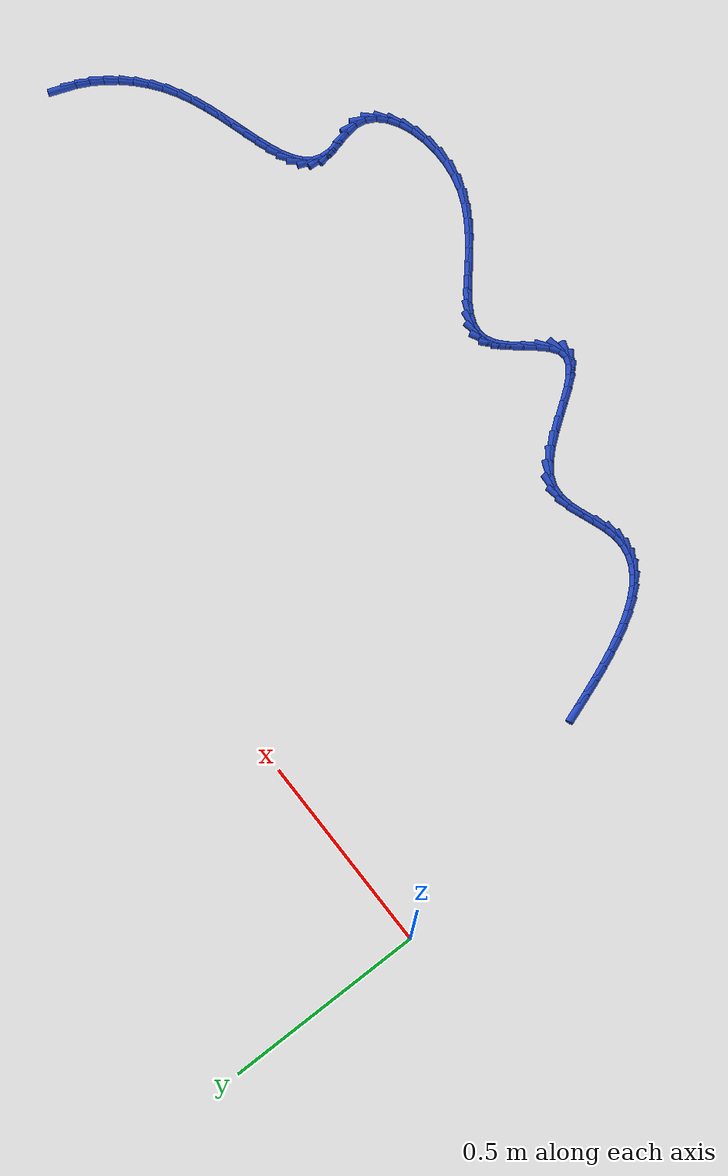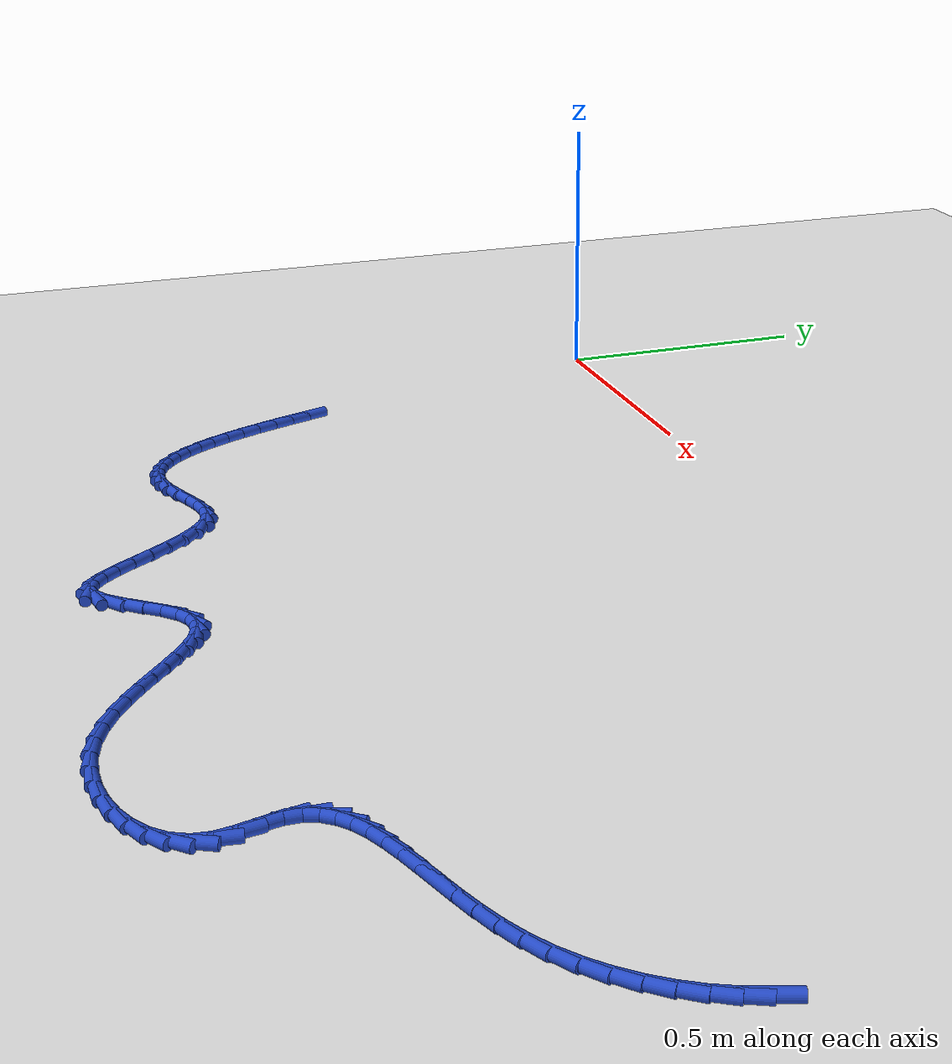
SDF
<sdf version="1.6">
 <world name="default">
  <model name="ground_plane">
   <static>1</static>
   <link name="link">
    <collision name="collision">
     <geometry><plane><normal>0 0 1</normal><size>100 100</size></plane></geometry>
     <surface><friction><ode><mu>100</mu><mu2>50</mu2></ode></friction></surface>
    </collision>
    <visual name="visual">
     <cast_shadows>0</cast_shadows>
     <geometry><plane><normal>0 0 1</normal><size>100 100</size></plane></geometry>
     <material>
      <script><uri>file://media/materials/scripts/gazebo.material</uri><name>Gazebo/WhiteGlow</name></script>
     </material>
    </visual>
   </link>
  </model>
  <model name="line">
   <link name="link_147">
    <pose>2.226204409374347 -0.6352165556235677 0.01 0 1.57 1.223437466874839</pose>
    <collision name="collision">
     <geometry><cylinder><radius>0.01</radius><length>0.08</length></cylinder></geometry>
    </collision>
    <visual name="visual">
     <material>
      <script><name>Gazebo/Blue</name><uri>file://media/materials/scripts/gazebo.material</uri></script>
     </material>
     <geometry><cylinder><radius>0.01</radius><length>0.08</length></cylinder></geometry>
    </visual>
   </link>
   <link name="link_148">
    <pose>2.214405304147954 -0.6678073199366796 0.01 0 1.57 1.1173346988674742</pose>
    <collision name="collision">
     <geometry><cylinder><radius>0.01</radius><length>0.08</length></cylinder></geometry>
    </collision>
    <visual name="visual">
     <material>
      <script><name>Gazebo/Blue</name><uri>file://media/materials/scripts/gazebo.material</uri></script>
     </material>
     <geometry><cylinder><radius>0.01</radius><length>0.08</length></cylinder></geometry>
    </visual>
   </link>
   <link name="link_149">
    <pose>2.198827617034109 -0.6997725915031218 0.01 0 1.57 1.0163183813292729</pose>
    <collision name="collision">
     <geometry><cylinder><radius>0.01</radius><length>0.08</length></cylinder></geometry>
    </collision>
    <visual name="visual">
     <material>
      <script><name>Gazebo/Blue</name><uri>file://media/materials/scripts/gazebo.material</uri></script>
     </material>
     <geometry><cylinder><radius>0.01</radius><length>0.08</length></cylinder></geometry>
    </visual>
   </link>
   <link name="link_150">
    <pose>2.17964737662306 -0.7307442597507422 0.01 0 1.57 0.9187203372529833</pose>
    <collision name="collision">
     <geometry><cylinder><radius>0.01</radius><length>0.08</length></cylinder></geometry>
    </collision>
    <visual name="visual">
     <material>
      <script><name>Gazebo/Blue</name><uri>file://media/materials/scripts/gazebo.material</uri></script>
     </material>
     <geometry><cylinder><radius>0.01</radius><length>0.08</length></cylinder></geometry>
    </visual>
   </link>
   <link name="link_151">
    <pose>2.157040611505059 -0.760354214107389 0.01 0 1.57 0.8230239939863851</pose>
    <collision name="collision">
     <geometry><cylinder><radius>0.01</radius><length>0.08</length></cylinder></geometry>
    </collision>
    <visual name="visual">
     <material>
      <script><name>Gazebo/Blue</name><uri>file://media/materials/scripts/gazebo.material</uri></script>
     </material>
     <geometry><cylinder><radius>0.01</radius><length>0.08</length></cylinder></geometry>
    </visual>
   </link>
   <link name="link_152">
    <pose>2.131183350270356 -0.7882343440009099 0.01 0 1.57 0.727897954029029</pose>
    <collision name="collision">
     <geometry><cylinder><radius>0.01</radius><length>0.08</length></cylinder></geometry>
    </collision>
    <visual name="visual">
     <material>
      <script><name>Gazebo/Blue</name><uri>file://media/materials/scripts/gazebo.material</uri></script>
     </material>
     <geometry><cylinder><radius>0.01</radius><length>0.08</length></cylinder></geometry>
    </visual>
   </link>
   <link name="link_153">
    <pose>2.102251621509201 -0.8140165388591529 0.01 0 1.57 0.6322179862990895</pose>
    <collision name="collision">
     <geometry><cylinder><radius>0.01</radius><length>0.08</length></cylinder></geometry>
    </collision>
    <visual name="visual">
     <material>
      <script><name>Gazebo/Blue</name><uri>file://media/materials/scripts/gazebo.material</uri></script>
     </material>
     <geometry><cylinder><radius>0.01</radius><length>0.08</length></cylinder></geometry>
    </visual>
   </link>
   <link name="link_154">
    <pose>2.070421453811845 -0.837332688109966 0.01 0 1.57 0.5351159728779951</pose>
    <collision name="collision">
     <geometry><cylinder><radius>0.01</radius><length>0.08</length></cylinder></geometry>
    </collision>
    <visual name="visual">
     <material>
      <script><name>Gazebo/Blue</name><uri>file://media/materials/scripts/gazebo.material</uri></script>
     </material>
     <geometry><cylinder><radius>0.01</radius><length>0.08</length></cylinder></geometry>
    </visual>
   </link>
   <link name="link_155">
    <pose>2.0358694281931493 -0.857815474925054 0.01 0 1.57 0.4433574619339029</pose>
    <collision name="collision">
     <geometry><cylinder><radius>0.01</radius><length>0.08</length></cylinder></geometry>
    </collision>
    <visual name="visual">
     <material>
      <script><name>Gazebo/Blue</name><uri>file://media/materials/scripts/gazebo.material</uri></script>
     </material>
     <geometry><cylinder><radius>0.01</radius><length>0.08</length></cylinder></geometry>
    </visual>
   </link>
   <link name="link_156">
    <pose>1.9989473493402163 -0.8753493502488493 0.01 0 1.57 0.37315781960749433</pose>
    <collision name="collision">
     <geometry><cylinder><radius>0.01</radius><length>0.08</length></cylinder></geometry>
    </collision>
    <visual name="visual">
     <material>
      <script><name>Gazebo/Blue</name><uri>file://media/materials/scripts/gazebo.material</uri></script>
     </material>
     <geometry><cylinder><radius>0.01</radius><length>0.08</length></cylinder></geometry>
    </visual>
   </link>
   <link name="link_157">
    <pose>1.960431310793637 -0.8904283987485867 0.01 0 1.57 0.32446278204994455</pose>
    <collision name="collision">
     <geometry><cylinder><radius>0.01</radius><length>0.08</length></cylinder></geometry>
    </collision>
    <visual name="visual">
     <material>
      <script><name>Gazebo/Blue</name><uri>file://media/materials/scripts/gazebo.material</uri></script>
     </material>
     <geometry><cylinder><radius>0.01</radius><length>0.08</length></cylinder></geometry>
    </visual>
   </link>
   <link name="link_158">
    <pose>1.9211603655813965 -0.9036371675827314 0.01 0 1.57 0.2953618771786555</pose>
    <collision name="collision">
     <geometry><cylinder><radius>0.01</radius><length>0.08</length></cylinder></geometry>
    </collision>
    <visual name="visual">
     <material>
      <script><name>Gazebo/Blue</name><uri>file://media/materials/scripts/gazebo.material</uri></script>
     </material>
     <geometry><cylinder><radius>0.01</radius><length>0.08</length></cylinder></geometry>
    </visual>
   </link>
   <link name="link_159">
    <pose>1.881973566731479 -0.9155602039097475 0.01 0 1.57 0.2852779659926183</pose>
    <collision name="collision">
     <geometry><cylinder><radius>0.01</radius><length>0.08</length></cylinder></geometry>
    </collision>
    <visual name="visual">
     <material>
      <script><name>Gazebo/Blue</name><uri>file://media/materials/scripts/gazebo.material</uri></script>
     </material>
     <geometry><cylinder><radius>0.01</radius><length>0.08</length></cylinder></geometry>
    </visual>
   </link>
   <link name="link_160">
    <pose>1.8437099672718702 -0.9267820548881002 0.01 0 1.57 0.29534322639858374</pose>
    <collision name="collision">
     <geometry><cylinder><radius>0.01</radius><length>0.08</length></cylinder></geometry>
    </collision>
    <visual name="visual">
     <material>
      <script><name>Gazebo/Blue</name><uri>file://media/materials/scripts/gazebo.material</uri></script>
     </material>
     <geometry><cylinder><radius>0.01</radius><length>0.08</length></cylinder></geometry>
    </visual>
   </link>
   <link name="link_161">
    <pose>1.807208620230555 -0.9378872676762542 0.01 0 1.57 0.328983589654823</pose>
    <collision name="collision">
     <geometry><cylinder><radius>0.01</radius><length>0.08</length></cylinder></geometry>
    </collision>
    <visual name="visual">
     <material>
      <script><name>Gazebo/Blue</name><uri>file://media/materials/scripts/gazebo.material</uri></script>
     </material>
     <geometry><cylinder><radius>0.01</radius><length>0.08</length></cylinder></geometry>
    </visual>
   </link>
   <link name="link_162">
    <pose>1.7733085786355187 -0.9494603894326743 0.01 0 1.57 0.3929446458283331</pose>
    <collision name="collision">
     <geometry><cylinder><radius>0.01</radius><length>0.08</length></cylinder></geometry>
    </collision>
    <visual name="visual">
     <material>
      <script><name>Gazebo/Blue</name><uri>file://media/materials/scripts/gazebo.material</uri></script>
     </material>
     <geometry><cylinder><radius>0.01</radius><length>0.08</length></cylinder></geometry>
    </visual>
   </link>
   <link name="link_163">
    <pose>1.7428488955147468 -0.9620859673158253 0.01 0 1.57 0.49882943494961995</pose>
    <collision name="collision">
     <geometry><cylinder><radius>0.01</radius><length>0.08</length></cylinder></geometry>
    </collision>
    <visual name="visual">
     <material>
      <script><name>Gazebo/Blue</name><uri>file://media/materials/scripts/gazebo.material</uri></script>
     </material>
     <geometry><cylinder><radius>0.01</radius><length>0.08</length></cylinder></geometry>
    </visual>
   </link>
   <link name="link_164">
    <pose>1.7166686238962234 -0.976348548484172 0.01 0 1.57 0.6640749663755083</pose>
    <collision name="collision">
     <geometry><cylinder><radius>0.01</radius><length>0.08</length></cylinder></geometry>
    </collision>
    <visual name="visual">
     <material>
      <script><name>Gazebo/Blue</name><uri>file://media/materials/scripts/gazebo.material</uri></script>
     </material>
     <geometry><cylinder><radius>0.01</radius><length>0.08</length></cylinder></geometry>
    </visual>
   </link>
   <link name="link_165">
    <pose>1.6956068168079343 -0.9928326800961792 0.01 0 1.57 0.9065062498769595</pose>
    <collision name="collision">
     <geometry><cylinder><radius>0.01</radius><length>0.08</length></cylinder></geometry>
    </collision>
    <visual name="visual">
     <material>
      <script><name>Gazebo/Blue</name><uri>file://media/materials/scripts/gazebo.material</uri></script>
     </material>
     <geometry><cylinder><radius>0.01</radius><length>0.08</length></cylinder></geometry>
    </visual>
   </link>
   <link name="link_166">
    <pose>1.6805025272778649 -1.012122909310312 0.01 0 1.57 1.2196858702829307</pose>
    <collision name="collision">
     <geometry><cylinder><radius>0.01</radius><length>0.08</length></cylinder></geometry>
    </collision>
    <visual name="visual">
     <material>
      <script><name>Gazebo/Blue</name><uri>file://media/materials/scripts/gazebo.material</uri></script>
     </material>
     <geometry><cylinder><radius>0.01</radius><length>0.08</length></cylinder></geometry>
    </visual>
   </link>
   <link name="link_167">
    <pose>1.672194808334 -1.0348037832850348 0.01 0 1.57 1.5455851505147316</pose>
    <collision name="collision">
     <geometry><cylinder><radius>0.01</radius><length>0.08</length></cylinder></geometry>
    </collision>
    <visual name="visual">
     <material>
      <script><name>Gazebo/Blue</name><uri>file://media/materials/scripts/gazebo.material</uri></script>
     </material>
     <geometry><cylinder><radius>0.01</radius><length>0.08</length></cylinder></geometry>
    </visual>
   </link>
   <link name="link_168">
    <pose>1.671522636017382 -1.0614598143818337 0.01 0 1.57 -1.361061001311254</pose>
    <collision name="collision">
     <geometry><cylinder><radius>0.01</radius><length>0.08</length></cylinder></geometry>
    </collision>
    <visual name="visual">
     <material>
      <script><name>Gazebo/Blue</name><uri>file://media/materials/scripts/gazebo.material</uri></script>
     </material>
     <geometry><cylinder><radius>0.01</radius><length>0.08</length></cylinder></geometry>
    </visual>
   </link>
   <link name="link_169">
    <pose>1.6780441585931059 -1.0920965994303915 0.01 0 1.57 -1.3086891486078351</pose>
    <collision name="collision">
     <geometry><cylinder><radius>0.01</radius><length>0.08</length></cylinder></geometry>
    </collision>
    <visual name="visual">
     <material>
      <script><name>Gazebo/Blue</name><uri>file://media/materials/scripts/gazebo.material</uri></script>
     </material>
     <geometry><cylinder><radius>0.01</radius><length>0.08</length></cylinder></geometry>
    </visual>
   </link>
   <link name="link_170">
    <pose>1.686782970515244 -1.1246701828691206 0.01 0 1.57 -1.4165732696789697</pose>
    <collision name="collision">
     <geometry><cylinder><radius>0.01</radius><length>0.08</length></cylinder></geometry>
    </collision>
    <visual name="visual">
     <material>
      <script><name>Gazebo/Blue</name><uri>file://media/materials/scripts/gazebo.material</uri></script>
     </material>
     <geometry><cylinder><radius>0.01</radius><length>0.08</length></cylinder></geometry>
    </visual>
   </link>
   <link name="link_171">
    <pose>1.6917596437812743 -1.1566832575697557 0.01 0 1.57 1.4329986858739048</pose>
    <collision name="collision">
     <geometry><cylinder><radius>0.01</radius><length>0.08</length></cylinder></geometry>
    </collision>
    <visual name="visual">
     <material>
      <script><name>Gazebo/Blue</name><uri>file://media/materials/scripts/gazebo.material</uri></script>
     </material>
     <geometry><cylinder><radius>0.01</radius><length>0.08</length></cylinder></geometry>
    </visual>
   </link>
   <link name="link_172">
    <pose>1.6877134432878285 -1.18586052055446 0.01 0 1.57 1.0814693480373092</pose>
    <collision name="collision">
     <geometry><cylinder><radius>0.01</radius><length>0.08</length></cylinder></geometry>
    </collision>
    <visual name="visual">
     <material>
      <script><name>Gazebo/Blue</name><uri>file://media/materials/scripts/gazebo.material</uri></script>
     </material>
     <geometry><cylinder><radius>0.01</radius><length>0.08</length></cylinder></geometry>
    </visual>
   </link>
   <link name="link_173">
    <pose>1.6741187347912878 -1.2113893409335765 0.01 0 1.57 0.783249567084389</pose>
    <collision name="collision">
     <geometry><cylinder><radius>0.01</radius><length>0.08</length></cylinder></geometry>
    </collision>
    <visual name="visual">
     <material>
      <script><name>Gazebo/Blue</name><uri>file://media/materials/scripts/gazebo.material</uri></script>
     </material>
     <geometry><cylinder><radius>0.01</radius><length>0.08</length></cylinder></geometry>
    </visual>
   </link>
   <link name="link_174">
    <pose>1.65236586547387 -1.2330489342503026 0.01 0 1.57 0.5522496134158403</pose>
    <collision name="collision">
     <geometry><cylinder><radius>0.01</radius><length>0.08</length></cylinder></geometry>
    </collision>
    <visual name="visual">
     <material>
      <script><name>Gazebo/Blue</name><uri>file://media/materials/scripts/gazebo.material</uri></script>
     </material>
     <geometry><cylinder><radius>0.01</radius><length>0.08</length></cylinder></geometry>
    </visual>
   </link>
   <link name="link_175">
    <pose>1.6238505851539817 -1.2506201849215066 0.01 0 1.57 0.3731321065700146</pose>
    <collision name="collision">
     <geometry><cylinder><radius>0.01</radius><length>0.08</length></cylinder></geometry>
    </collision>
    <visual name="visual">
     <material>
      <script><name>Gazebo/Blue</name><uri>file://media/materials/scripts/gazebo.material</uri></script>
     </material>
     <geometry><cylinder><radius>0.01</radius><length>0.08</length></cylinder></geometry>
    </visual>
   </link>
   <link name="link_176">
    <pose>1.5899686436500309 -1.2638839773640556 0.01 0 1.57 0.2268476299415557</pose>
    <collision name="collision">
     <geometry><cylinder><radius>0.01</radius><length>0.08</length></cylinder></geometry>
    </collision>
    <visual name="visual">
     <material>
      <script><name>Gazebo/Blue</name><uri>file://media/materials/scripts/gazebo.material</uri></script>
     </material>
     <geometry><cylinder><radius>0.01</radius><length>0.08</length></cylinder></geometry>
    </visual>
   </link>
   <link name="link_177">
    <pose>1.552115790780421 -1.2726211959948186 0.01 0 1.57 0.0984128176579799</pose>
    <collision name="collision">
     <geometry><cylinder><radius>0.01</radius><length>0.08</length></cylinder></geometry>
    </collision>
    <visual name="visual">
     <material>
      <script><name>Gazebo/Blue</name><uri>file://media/materials/scripts/gazebo.material</uri></script>
     </material>
     <geometry><cylinder><radius>0.01</radius><length>0.08</length></cylinder></geometry>
    </visual>
   </link>
   <link name="link_178">
    <pose>1.511687776363562 -1.276612725230664 0.01 0 1.57 -0.023387610617801993</pose>
    <collision name="collision">
     <geometry><cylinder><radius>0.01</radius><length>0.08</length></cylinder></geometry>
    </collision>
    <visual name="visual">
     <material>
      <script><name>Gazebo/Blue</name><uri>file://media/materials/scripts/gazebo.material</uri></script>
     </material>
     <geometry><cylinder><radius>0.01</radius><length>0.08</length></cylinder></geometry>
    </visual>
   </link>
   <link name="link_179">
    <pose>1.4700803502178583 -1.275639449488459 0.01 0 1.57 -0.14767365825421203</pose>
    <collision name="collision">
     <geometry><cylinder><radius>0.01</radius><length>0.08</length></cylinder></geometry>
    </collision>
    <visual name="visual">
     <material>
      <script><name>Gazebo/Blue</name><uri>file://media/materials/scripts/gazebo.material</uri></script>
     </material>
     <geometry><cylinder><radius>0.01</radius><length>0.08</length></cylinder></geometry>
    </visual>
   </link>
   <link name="link_180">
    <pose>1.4286892621617175 -1.269482253185072 0.01 0 1.57 -0.282168497680794</pose>
    <collision name="collision">
     <geometry><cylinder><radius>0.01</radius><length>0.08</length></cylinder></geometry>
    </collision>
    <visual name="visual">
     <material>
      <script><name>Gazebo/Blue</name><uri>file://media/materials/scripts/gazebo.material</uri></script>
     </material>
     <geometry><cylinder><radius>0.01</radius><length>0.08</length></cylinder></geometry>
    </visual>
   </link>
   <link name="link_181">
    <pose>1.3888859133507556 -1.2579431190865964 0.01 0 1.57 -0.4142237021798577</pose>
    <collision name="collision">
     <geometry><cylinder><radius>0.01</radius><length>0.08</length></cylinder></geometry>
    </collision>
    <visual name="visual">
     <material>
      <script><name>Gazebo/Blue</name><uri>file://media/materials/scripts/gazebo.material</uri></script>
     </material>
     <geometry><cylinder><radius>0.01</radius><length>0.08</length></cylinder></geometry>
    </visual>
   </link>
   <link name="link_182">
    <pose>1.3513372883009505 -1.2414344137157913 0.01 0 1.57 -0.5220217719661278</pose>
    <collision name="collision">
     <geometry><cylinder><radius>0.01</radius><length>0.08</length></cylinder></geometry>
    </collision>
    <visual name="visual">
     <material>
      <script><name>Gazebo/Blue</name><uri>file://media/materials/scripts/gazebo.material</uri></script>
     </material>
     <geometry><cylinder><radius>0.01</radius><length>0.08</length></cylinder></geometry>
    </visual>
   </link>
   <link name="link_183">
    <pose>1.3159149589790096 -1.2210577361782364 0.01 0 1.57 -0.604262572025927</pose>
    <collision name="collision">
     <geometry><cylinder><radius>0.01</radius><length>0.08</length></cylinder></geometry>
    </collision>
    <visual name="visual">
     <material>
      <script><name>Gazebo/Blue</name><uri>file://media/materials/scripts/gazebo.material</uri></script>
     </material>
     <geometry><cylinder><radius>0.01</radius><length>0.08</length></cylinder></geometry>
    </visual>
   </link>
   <link name="link_184">
    <pose>1.282447865258563 -1.1979516266959798 0.01 0 1.57 -0.6621186181030722</pose>
    <collision name="collision">
     <geometry><cylinder><radius>0.01</radius><length>0.08</length></cylinder></geometry>
    </collision>
    <visual name="visual">
     <material>
      <script><name>Gazebo/Blue</name><uri>file://media/materials/scripts/gazebo.material</uri></script>
     </material>
     <geometry><cylinder><radius>0.01</radius><length>0.08</length></cylinder></geometry>
    </visual>
   </link>
   <link name="link_185">
    <pose>1.2507649470132414 -1.1732546254910694 0.01 0 1.57 -0.6965252215689282</pose>
    <collision name="collision">
     <geometry><cylinder><radius>0.01</radius><length>0.08</length></cylinder></geometry>
    </collision>
    <visual name="visual">
     <material>
      <script><name>Gazebo/Blue</name><uri>file://media/materials/scripts/gazebo.material</uri></script>
     </material>
     <geometry><cylinder><radius>0.01</radius><length>0.08</length></cylinder></geometry>
    </visual>
   </link>
   <link name="link_186">
    <pose>1.2206951441166758 -1.1481052727855536 0.01 0 1.57 -0.7071159662305825</pose>
    <collision name="collision">
     <geometry><cylinder><radius>0.01</radius><length>0.08</length></cylinder></geometry>
    </collision>
    <visual name="visual">
     <material>
      <script><name>Gazebo/Blue</name><uri>file://media/materials/scripts/gazebo.material</uri></script>
     </material>
     <geometry><cylinder><radius>0.01</radius><length>0.08</length></cylinder></geometry>
    </visual>
   </link>
   <link name="link_187">
    <pose>1.1920673964424957 -1.1236421088014799 0.01 0 1.57 -0.6913014332765246</pose>
    <collision name="collision">
     <geometry><cylinder><radius>0.01</radius><length>0.08</length></cylinder></geometry>
    </collision>
    <visual name="visual">
     <material>
      <script><name>Gazebo/Blue</name><uri>file://media/materials/scripts/gazebo.material</uri></script>
     </material>
     <geometry><cylinder><radius>0.01</radius><length>0.08</length></cylinder></geometry>
    </visual>
   </link>
   <link name="link_188">
    <pose>1.1647106438643329 -1.101003673760897 0.01 0 1.57 -0.6430757010297584</pose>
    <collision name="collision">
     <geometry><cylinder><radius>0.01</radius><length>0.08</length></cylinder></geometry>
    </collision>
    <visual name="visual">
     <material>
      <script><name>Gazebo/Blue</name><uri>file://media/materials/scripts/gazebo.material</uri></script>
     </material>
     <geometry><cylinder><radius>0.01</radius><length>0.08</length></cylinder></geometry>
    </visual>
   </link>
   <link name="link_189">
    <pose>1.1384538262558168 -1.0813285078858526 0.01 0 1.57 -0.5512806127221122</pose>
    <collision name="collision">
     <geometry><cylinder><radius>0.01</radius><length>0.08</length></cylinder></geometry>
    </collision>
    <visual name="visual">
     <material>
      <script><name>Gazebo/Blue</name><uri>file://media/materials/scripts/gazebo.material</uri></script>
     </material>
     <geometry><cylinder><radius>0.01</radius><length>0.08</length></cylinder></geometry>
    </visual>
   </link>
   <link name="link_190">
    <pose>1.1131258834905782 -1.0657551513983952 0.01 0 1.57 -0.3980967947313958</pose>
    <collision name="collision">
     <geometry><cylinder><radius>0.01</radius><length>0.08</length></cylinder></geometry>
    </collision>
    <visual name="visual">
     <material>
      <script><name>Gazebo/Blue</name><uri>file://media/materials/scripts/gazebo.material</uri></script>
     </material>
     <geometry><cylinder><radius>0.01</radius><length>0.08</length></cylinder></geometry>
    </visual>
   </link>
   <link name="link_191">
    <pose>1.088555755442248 -1.0554221445205725 0.01 0 1.57 -0.16339917932133863</pose>
    <collision name="collision">
     <geometry><cylinder><radius>0.01</radius><length>0.08</length></cylinder></geometry>
    </collision>
    <visual name="visual">
     <material>
      <script><name>Gazebo/Blue</name><uri>file://media/materials/scripts/gazebo.material</uri></script>
     </material>
     <geometry><cylinder><radius>0.01</radius><length>0.08</length></cylinder></geometry>
    </visual>
   </link>
   <link name="link_192">
    <pose>1.0645723819844555 -1.0514680274744324 0.01 0 1.57 0.1500583543872624</pose>
    <collision name="collision">
     <geometry><cylinder><radius>0.01</radius><length>0.08</length></cylinder></geometry>
    </collision>
    <visual name="visual">
     <material>
      <script><name>Gazebo/Blue</name><uri>file://media/materials/scripts/gazebo.material</uri></script>
     </material>
     <geometry><cylinder><radius>0.01</radius><length>0.08</length></cylinder></geometry>
    </visual>
   </link>
   <link name="link_193">
    <pose>1.0410047029908325 -1.0550313404820235 0.01 0 1.57 0.48259573344270373</pose>
    <collision name="collision">
     <geometry><cylinder><radius>0.01</radius><length>0.08</length></cylinder></geometry>
    </collision>
    <visual name="visual">
     <material>
      <script><name>Gazebo/Blue</name><uri>file://media/materials/scripts/gazebo.material</uri></script>
     </material>
     <geometry><cylinder><radius>0.01</radius><length>0.08</length></cylinder></geometry>
    </visual>
   </link>
   <link name="link_194">
    <pose>1.0176816583350088 -1.0672506237653936 0.01 0 1.57 0.7413630891364752</pose>
    <collision name="collision">
     <geometry><cylinder><radius>0.01</radius><length>0.08</length></cylinder></geometry>
    </collision>
    <visual name="visual">
     <material>
      <script><name>Gazebo/Blue</name><uri>file://media/materials/scripts/gazebo.material</uri></script>
     </material>
     <geometry><cylinder><radius>0.01</radius><length>0.08</length></cylinder></geometry>
    </visual>
   </link>
   <link name="link_195">
    <pose>0.9944636563711134 -1.0885088450432887 0.01 0 1.57 0.8602461444265743</pose>
    <collision name="collision">
     <geometry><cylinder><radius>0.01</radius><length>0.08</length></cylinder></geometry>
    </collision>
    <visual name="visual">
     <material>
      <script><name>Gazebo/Blue</name><uri>file://media/materials/scripts/gazebo.material</uri></script>
     </material>
     <geometry><cylinder><radius>0.01</radius><length>0.08</length></cylinder></geometry>
    </visual>
   </link>
   <link name="link_196">
    <pose>0.9713711846531354 -1.1153453977705885 0.01 0 1.57 0.880692075317916</pose>
    <collision name="collision">
     <geometry><cylinder><radius>0.01</radius><length>0.08</length></cylinder></geometry>
    </collision>
    <visual name="visual">
     <material>
      <script><name>Gazebo/Blue</name><uri>file://media/materials/scripts/gazebo.material</uri></script>
     </material>
     <geometry><cylinder><radius>0.01</radius><length>0.08</length></cylinder></geometry>
    </visual>
   </link>
   <link name="link_197">
    <pose>0.948475505765742 -1.143080543863993 0.01 0 1.57 0.8138549140271253</pose>
    <collision name="collision">
     <geometry><cylinder><radius>0.01</radius><length>0.08</length></cylinder></geometry>
    </collision>
    <visual name="visual">
     <material>
      <script><name>Gazebo/Blue</name><uri>file://media/materials/scripts/gazebo.material</uri></script>
     </material>
     <geometry><cylinder><radius>0.01</radius><length>0.08</length></cylinder></geometry>
    </visual>
   </link>
   <link name="link_198">
    <pose>0.9258479028464419 -1.1670340517571103 0.01 0 1.57 0.6074019622311386</pose>
    <collision name="collision">
     <geometry><cylinder><radius>0.01</radius><length>0.08</length></cylinder></geometry>
    </collision>
    <visual name="visual">
     <material>
      <script><name>Gazebo/Blue</name><uri>file://media/materials/scripts/gazebo.material</uri></script>
     </material>
     <geometry><cylinder><radius>0.01</radius><length>0.08</length></cylinder></geometry>
    </visual>
   </link>
   <link name="link_199">
    <pose>0.9035596590327455 -1.1825256898835483 0.01 0 1.57 0.14388567986424802</pose>
    <collision name="collision">
     <geometry><cylinder><radius>0.01</radius><length>0.08</length></cylinder></geometry>
    </collision>
    <visual name="visual">
     <material>
      <script><name>Gazebo/Blue</name><uri>file://media/materials/scripts/gazebo.material</uri></script>
     </material>
     <geometry><cylinder><radius>0.01</radius><length>0.08</length></cylinder></geometry>
    </visual>
   </link>
   <link name="link_200">
    <pose>0.8816488795398446 -1.1857002754937476 0.01 0 1.57 -0.37208463021936145</pose>
    <collision name="collision">
     <geometry><cylinder><radius>0.01</radius><length>0.08</length></cylinder></geometry>
    </collision>
    <visual name="visual">
     <material>
      <script><name>Gazebo/Blue</name><uri>file://media/materials/scripts/gazebo.material</uri></script>
     </material>
     <geometry><cylinder><radius>0.01</radius><length>0.08</length></cylinder></geometry>
    </visual>
   </link>
   <link name="link_201">
    <pose>0.8599711960002339 -1.1772402702411653 0.01 0 1.57 -0.6897462388290447</pose>
    <collision name="collision">
     <geometry><cylinder><radius>0.01</radius><length>0.08</length></cylinder></geometry>
    </collision>
    <visual name="visual">
     <material>
      <script><name>Gazebo/Blue</name><uri>file://media/materials/scripts/gazebo.material</uri></script>
     </material>
     <geometry><cylinder><radius>0.01</radius><length>0.08</length></cylinder></geometry>
    </visual>
   </link>
   <link name="link_202">
    <pose>0.8383198401418678 -1.1593798594501379 0.01 0 1.57 -0.8534453858028865</pose>
    <collision name="collision">
     <geometry><cylinder><radius>0.01</radius><length>0.08</length></cylinder></geometry>
    </collision>
    <visual name="visual">
     <material>
      <script><name>Gazebo/Blue</name><uri>file://media/materials/scripts/gazebo.material</uri></script>
     </material>
     <geometry><cylinder><radius>0.01</radius><length>0.08</length></cylinder></geometry>
    </visual>
   </link>
   <link name="link_203">
    <pose>0.8164879893179354 -1.1343545806043058 0.01 0 1.57 -0.9325889050527592</pose>
    <collision name="collision">
     <geometry><cylinder><radius>0.01</radius><length>0.08</length></cylinder></geometry>
    </collision>
    <visual name="visual">
     <material>
      <script><name>Gazebo/Blue</name><uri>file://media/materials/scripts/gazebo.material</uri></script>
     </material>
     <geometry><cylinder><radius>0.01</radius><length>0.08</length></cylinder></geometry>
    </visual>
   </link>
   <link name="link_204">
    <pose>0.7942688208816259 -1.104399971187308 0.01 0 1.57 -0.960904894535647</pose>
    <collision name="collision">
     <geometry><cylinder><radius>0.01</radius><length>0.08</length></cylinder></geometry>
    </collision>
    <visual name="visual">
     <material>
      <script><name>Gazebo/Blue</name><uri>file://media/materials/scripts/gazebo.material</uri></script>
     </material>
     <geometry><cylinder><radius>0.01</radius><length>0.08</length></cylinder></geometry>
    </visual>
   </link>
   <link name="link_205">
    <pose>0.7714555121861282 -1.0717515686827845 0.01 0 1.57 -0.9512140143721847</pose>
    <collision name="collision">
     <geometry><cylinder><radius>0.01</radius><length>0.08</length></cylinder></geometry>
    </collision>
    <visual name="visual">
     <material>
      <script><name>Gazebo/Blue</name><uri>file://media/materials/scripts/gazebo.material</uri></script>
     </material>
     <geometry><cylinder><radius>0.01</radius><length>0.08</length></cylinder></geometry>
    </visual>
   </link>
   <link name="link_206">
    <pose>0.7478412405846313 -1.0386449105743745 0.01 0 1.57 -0.9047063463412254</pose>
    <collision name="collision">
     <geometry><cylinder><radius>0.01</radius><length>0.08</length></cylinder></geometry>
    </collision>
    <visual name="visual">
     <material>
      <script><name>Gazebo/Blue</name><uri>file://media/materials/scripts/gazebo.material</uri></script>
     </material>
     <geometry><cylinder><radius>0.01</radius><length>0.08</length></cylinder></geometry>
    </visual>
   </link>
   <link name="link_207">
    <pose>0.7232191834303239 -1.0073155343457165 0.01 0 1.57 -0.8132329631513818</pose>
    <collision name="collision">
     <geometry><cylinder><radius>0.01</radius><length>0.08</length></cylinder></geometry>
    </collision>
    <visual name="visual">
     <material>
      <script><name>Gazebo/Blue</name><uri>file://media/materials/scripts/gazebo.material</uri></script>
     </material>
     <geometry><cylinder><radius>0.01</radius><length>0.08</length></cylinder></geometry>
    </visual>
   </link>
   <link name="link_208">
    <pose>0.6973825180763953 -0.9799989774804512 0.01 0 1.57 -0.6580063339123228</pose>
    <collision name="collision">
     <geometry><cylinder><radius>0.01</radius><length>0.08</length></cylinder></geometry>
    </collision>
    <visual name="visual">
     <material>
      <script><name>Gazebo/Blue</name><uri>file://media/materials/scripts/gazebo.material</uri></script>
     </material>
     <geometry><cylinder><radius>0.01</radius><length>0.08</length></cylinder></geometry>
    </visual>
   </link>
   <link name="link_209">
    <pose>0.6701244218760349 -0.9589307774622173 0.01 0 1.57 -0.4108556530982897</pose>
    <collision name="collision">
     <geometry><cylinder><radius>0.01</radius><length>0.08</length></cylinder></geometry>
    </collision>
    <visual name="visual">
     <material>
      <script><name>Gazebo/Blue</name><uri>file://media/materials/scripts/gazebo.material</uri></script>
     </material>
     <geometry><cylinder><radius>0.01</radius><length>0.08</length></cylinder></geometry>
    </visual>
   </link>
   <link name="link_210">
    <pose>0.6412380721824306 -0.9463464717746539 0.01 0 1.57 -0.08637341033104276</pose>
    <collision name="collision">
     <geometry><cylinder><radius>0.01</radius><length>0.08</length></cylinder></geometry>
    </collision>
    <visual name="visual">
     <material>
      <script><name>Gazebo/Blue</name><uri>file://media/materials/scripts/gazebo.material</uri></script>
     </material>
     <geometry><cylinder><radius>0.01</radius><length>0.08</length></cylinder></geometry>
    </visual>
   </link>
   <link name="link_211">
    <pose>0.6106478043496426 -0.9436976957944992 0.01 0 1.57 0.16305153968946492</pose>
    <collision name="collision">
     <geometry><cylinder><radius>0.01</radius><length>0.08</length></cylinder></geometry>
    </collision>
    <visual name="visual">
     <material>
      <script><name>Gazebo/Blue</name><uri>file://media/materials/scripts/gazebo.material</uri></script>
     </material>
     <geometry><cylinder><radius>0.01</radius><length>0.08</length></cylinder></geometry>
    </visual>
   </link>
   <link name="link_212">
    <pose>0.5788651877127705 -0.94892631841894 0.01 0 1.57 0.30211006095324955</pose>
    <collision name="collision">
     <geometry><cylinder><radius>0.01</radius><length>0.08</length></cylinder></geometry>
    </collision>
    <visual name="visual">
     <material>
      <script><name>Gazebo/Blue</name><uri>file://media/materials/scripts/gazebo.material</uri></script>
     </material>
     <geometry><cylinder><radius>0.01</radius><length>0.08</length></cylinder></geometry>
    </visual>
   </link>
   <link name="link_213">
    <pose>0.5465660741301273 -0.9589923285590505 0.01 0 1.57 0.35360334042078445</pose>
    <collision name="collision">
     <geometry><cylinder><radius>0.01</radius><length>0.08</length></cylinder></geometry>
    </collision>
    <visual name="visual">
     <material>
      <script><name>Gazebo/Blue</name><uri>file://media/materials/scripts/gazebo.material</uri></script>
     </material>
     <geometry><cylinder><radius>0.01</radius><length>0.08</length></cylinder></geometry>
    </visual>
   </link>
   <link name="link_214">
    <pose>0.5144263232457871 -0.9708556685921399 0.01 0 1.57 0.3270818536186001</pose>
    <collision name="collision">
     <geometry><cylinder><radius>0.01</radius><length>0.08</length></cylinder></geometry>
    </collision>
    <visual name="visual">
     <material>
      <script><name>Gazebo/Blue</name><uri>file://media/materials/scripts/gazebo.material</uri></script>
     </material>
     <geometry><cylinder><radius>0.01</radius><length>0.08</length></cylinder></geometry>
    </visual>
   </link>
   <link name="link_215">
    <pose>0.4831217947038252 -0.9814762808955196 0.01 0 1.57 0.2106295952207479</pose>
    <collision name="collision">
     <geometry><cylinder><radius>0.01</radius><length>0.08</length></cylinder></geometry>
    </collision>
    <visual name="visual">
     <material>
      <script><name>Gazebo/Blue</name><uri>file://media/materials/scripts/gazebo.material</uri></script>
     </material>
     <geometry><cylinder><radius>0.01</radius><length>0.08</length></cylinder></geometry>
    </visual>
   </link>
   <link name="link_216">
    <pose>0.4533207034744555 -0.9878477759656172 0.01 0 1.57 0.018814083934406537</pose>
    <collision name="collision">
     <geometry><cylinder><radius>0.01</radius><length>0.08</length></cylinder></geometry>
    </collision>
    <visual name="visual">
     <material>
      <script><name>Gazebo/Blue</name><uri>file://media/materials/scripts/gazebo.material</uri></script>
     </material>
     <geometry><cylinder><radius>0.01</radius><length>0.08</length></cylinder></geometry>
    </visual>
   </link>
   <link name="link_217">
    <pose>0.4253711286244388 -0.9883736836660473 0.01 0 1.57 -0.18959611059527195</pose>
    <collision name="collision">
     <geometry><cylinder><radius>0.01</radius><length>0.08</length></cylinder></geometry>
    </collision>
    <visual name="visual">
     <material>
      <script><name>Gazebo/Blue</name><uri>file://media/materials/scripts/gazebo.material</uri></script>
     </material>
     <geometry><cylinder><radius>0.01</radius><length>0.08</length></cylinder></geometry>
    </visual>
   </link>
   <link name="link_218">
    <pose>0.39919149525604186 -0.9833497847426047 0.01 0 1.57 -0.3922835248105059</pose>
    <collision name="collision">
     <geometry><cylinder><radius>0.01</radius><length>0.08</length></cylinder></geometry>
    </collision>
    <visual name="visual">
     <material>
      <script><name>Gazebo/Blue</name><uri>file://media/materials/scripts/gazebo.material</uri></script>
     </material>
     <geometry><cylinder><radius>0.01</radius><length>0.08</length></cylinder></geometry>
    </visual>
   </link>
   <link name="link_219">
    <pose>0.37467008401786694 -0.973204619961363 0.01 0 1.57 -0.5734383196004015</pose>
    <collision name="collision">
     <geometry><cylinder><radius>0.01</radius><length>0.08</length></cylinder></geometry>
    </collision>
    <visual name="visual">
     <material>
      <script><name>Gazebo/Blue</name><uri>file://media/materials/scripts/gazebo.material</uri></script>
     </material>
     <geometry><cylinder><radius>0.01</radius><length>0.08</length></cylinder></geometry>
    </visual>
   </link>
   <link name="link_220">
    <pose>0.3516951755585158 -0.9583667300883963 0.01 0 1.57 -0.7254818037758011</pose>
    <collision name="collision">
     <geometry><cylinder><radius>0.01</radius><length>0.08</length></cylinder></geometry>
    </collision>
    <visual name="visual">
     <material>
      <script><name>Gazebo/Blue</name><uri>file://media/materials/scripts/gazebo.material</uri></script>
     </material>
     <geometry><cylinder><radius>0.01</radius><length>0.08</length></cylinder></geometry>
    </visual>
   </link>
   <link name="link_221">
    <pose>0.33015505052659105 -0.9392646558897793 0.01 0 1.57 -0.8483589982764762</pose>
    <collision name="collision">
     <geometry><cylinder><radius>0.01</radius><length>0.08</length></cylinder></geometry>
    </collision>
    <visual name="visual">
     <material>
      <script><name>Gazebo/Blue</name><uri>file://media/materials/scripts/gazebo.material</uri></script>
     </material>
     <geometry><cylinder><radius>0.01</radius><length>0.08</length></cylinder></geometry>
    </visual>
   </link>
   <link name="link_222">
    <pose>0.3099379895706945 -0.9163269381315856 0.01 0 1.57 -0.9458378149565956</pose>
    <collision name="collision">
     <geometry><cylinder><radius>0.01</radius><length>0.08</length></cylinder></geometry>
    </collision>
    <visual name="visual">
     <material>
      <script><name>Gazebo/Blue</name><uri>file://media/materials/scripts/gazebo.material</uri></script>
     </material>
     <geometry><cylinder><radius>0.01</radius><length>0.08</length></cylinder></geometry>
    </visual>
   </link>
   <link name="link_223">
    <pose>0.2909322733394285 -0.8899821175798895 0.01 0 1.57 -1.022588504165122</pose>
    <collision name="collision">
     <geometry><cylinder><radius>0.01</radius><length>0.08</length></cylinder></geometry>
    </collision>
    <visual name="visual">
     <material>
      <script><name>Gazebo/Blue</name><uri>file://media/materials/scripts/gazebo.material</uri></script>
     </material>
     <geometry><cylinder><radius>0.01</radius><length>0.08</length></cylinder></geometry>
    </visual>
   </link>
   <link name="link_224">
    <pose>0.2730261824813953 -0.8606587350007656 0.01 0 1.57 -1.0828187274160854</pose>
    <collision name="collision">
     <geometry><cylinder><radius>0.01</radius><length>0.08</length></cylinder></geometry>
    </collision>
    <visual name="visual">
     <material>
      <script><name>Gazebo/Blue</name><uri>file://media/materials/scripts/gazebo.material</uri></script>
     </material>
     <geometry><cylinder><radius>0.01</radius><length>0.08</length></cylinder></geometry>
    </visual>
   </link>
   <link name="link_225">
    <pose>0.25610799764519687 -0.8287853311602875 0.01 0 1.57 -1.1298848662546643</pose>
    <collision name="collision">
     <geometry><cylinder><radius>0.01</radius><length>0.08</length></cylinder></geometry>
    </collision>
    <visual name="visual">
     <material>
      <script><name>Gazebo/Blue</name><uri>file://media/materials/scripts/gazebo.material</uri></script>
     </material>
     <geometry><cylinder><radius>0.01</radius><length>0.08</length></cylinder></geometry>
    </visual>
   </link>
   <link name="link_226">
    <pose>0.24006599947943552 -0.7947904468245298 0.01 0 1.57 -1.1663129874538807</pose>
    <collision name="collision">
     <geometry><cylinder><radius>0.01</radius><length>0.08</length></cylinder></geometry>
    </collision>
    <visual name="visual">
     <material>
      <script><name>Gazebo/Blue</name><uri>file://media/materials/scripts/gazebo.material</uri></script>
     </material>
     <geometry><cylinder><radius>0.01</radius><length>0.08</length></cylinder></geometry>
    </visual>
   </link>
   <link name="link_227">
    <pose>0.22478846863271337 -0.7591026227595664 0.01 0 1.57 -1.1939370956881077</pose>
    <collision name="collision">
     <geometry><cylinder><radius>0.01</radius><length>0.08</length></cylinder></geometry>
    </collision>
    <visual name="visual">
     <material>
      <script><name>Gazebo/Blue</name><uri>file://media/materials/scripts/gazebo.material</uri></script>
     </material>
     <geometry><cylinder><radius>0.01</radius><length>0.08</length></cylinder></geometry>
    </visual>
   </link>
   <link name="link_228">
    <pose>0.21016368575363248 -0.7221503997314713 0.01 0 1.57 -1.2140404489224135</pose>
    <collision name="collision">
     <geometry><cylinder><radius>0.01</radius><length>0.08</length></cylinder></geometry>
    </collision>
    <visual name="visual">
     <material>
      <script><name>Gazebo/Blue</name><uri>file://media/materials/scripts/gazebo.material</uri></script>
     </material>
     <geometry><cylinder><radius>0.01</radius><length>0.08</length></cylinder></geometry>
    </visual>
   </link>
   <link name="link_229">
    <pose>0.19607993149079525 -0.6843623185063193 0.01 0 1.57 -1.227465198501198</pose>
    <collision name="collision">
     <geometry><cylinder><radius>0.01</radius><length>0.08</length></cylinder></geometry>
    </collision>
    <visual name="visual">
     <material>
      <script><name>Gazebo/Blue</name><uri>file://media/materials/scripts/gazebo.material</uri></script>
     </material>
     <geometry><cylinder><radius>0.01</radius><length>0.08</length></cylinder></geometry>
    </visual>
   </link>
   <link name="link_230">
    <pose>0.18242548649280366 -0.6461669198501839 0.01 0 1.57 -1.2346841849979544</pose>
    <collision name="collision">
     <geometry><cylinder><radius>0.01</radius><length>0.08</length></cylinder></geometry>
    </collision>
    <visual name="visual">
     <material>
      <script><name>Gazebo/Blue</name><uri>file://media/materials/scripts/gazebo.material</uri></script>
     </material>
     <geometry><cylinder><radius>0.01</radius><length>0.08</length></cylinder></geometry>
    </visual>
   </link>
  </model>
 </world>
</sdf>
